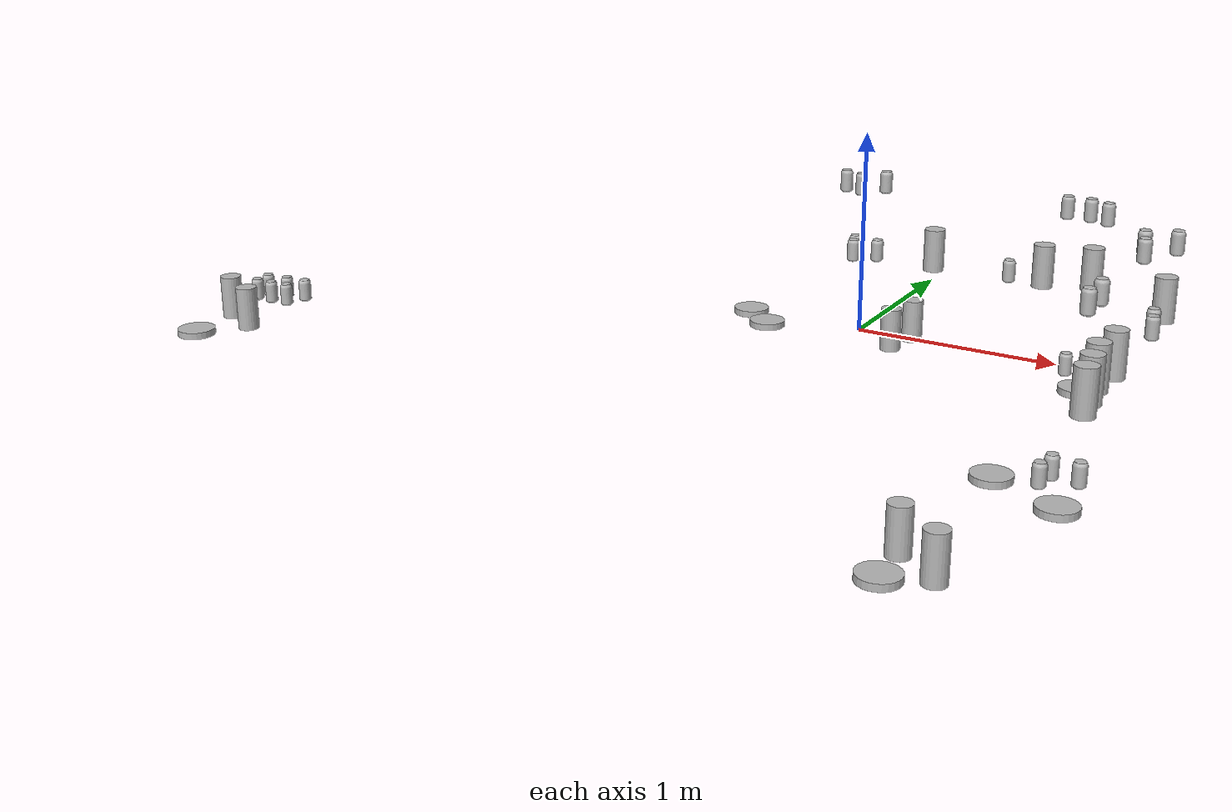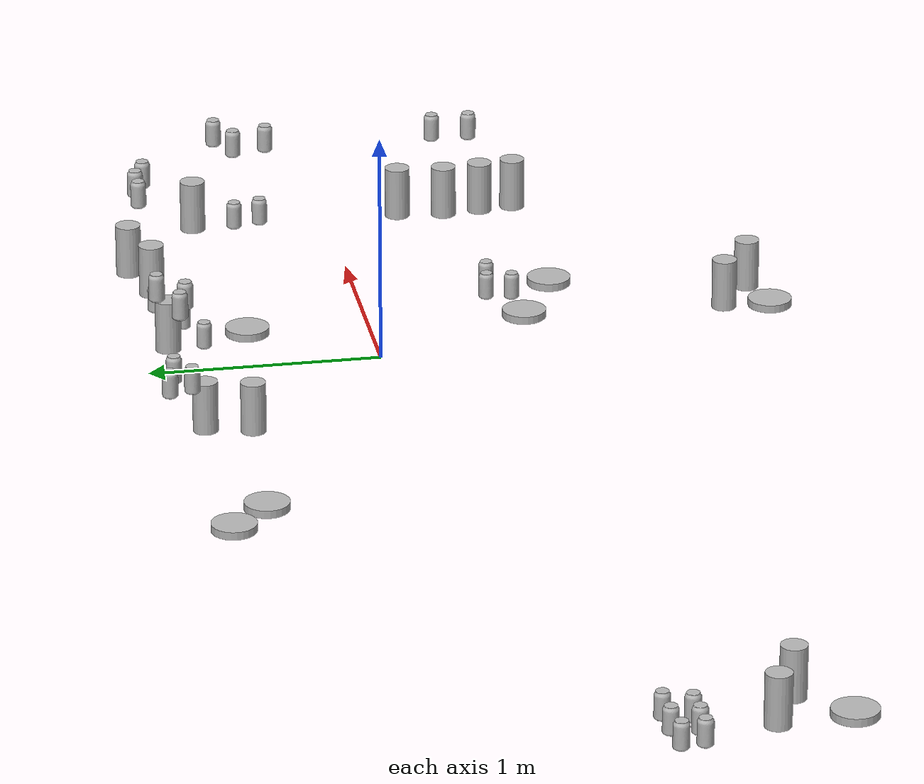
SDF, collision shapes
<?xml version='1.0'?>
<sdf version='1.6'>
  <model name='foods'>
    <model name='beer'>
      <link name='link'>
        <pose frame=''>0 0 0.115 0 -0 0</pose>
        <inertial>
          <mass>0.39</mass>
          <inertia>
            <ixx>0.00058</ixx>
            <ixy>0</ixy>
            <ixz>0</ixz>
            <iyy>0.00058</iyy>
            <iyz>0</iyz>
            <izz>0.00019</izz>
          </inertia>
        </inertial>
        <collision name='collision'>
          <geometry>
            <cylinder>
              <radius>0.055</radius>
              <length>0.23</length>
            </cylinder>
          </geometry>
        </collision>
        <visual name='visual'>
          <geometry>
            <cylinder>
              <radius>0.055</radius>
              <length>0.23</length>
            </cylinder>
          </geometry>
          <material>
            <script>
              <uri>model://beer/materials/scripts</uri>
              <uri>model://beer/materials/textures</uri>
              <name>Beer/Diffuse</name>
            </script>
          </material>
        </visual>
      </link>
      <pose frame=''>1.35123 -0.81106 0.089405 0 -0 0</pose>
    </model>
    <model name='beer_clone'>
      <link name='link'>
        <pose frame=''>0 0 0.115 0 -0 0</pose>
        <inertial>
          <mass>0.39</mass>
          <inertia>
            <ixx>0.00058</ixx>
            <ixy>0</ixy>
            <ixz>0</ixz>
            <iyy>0.00058</iyy>
            <iyz>0</iyz>
            <izz>0.00019</izz>
          </inertia>
        </inertial>
        <collision name='collision'>
          <geometry>
            <cylinder>
              <radius>0.055</radius>
              <length>0.23</length>
            </cylinder>
          </geometry>
        </collision>
        <visual name='visual'>
          <geometry>
            <cylinder>
              <radius>0.055</radius>
              <length>0.23</length>
            </cylinder>
          </geometry>
          <material>
            <script>
              <uri>model://beer/materials/scripts</uri>
              <uri>model://beer/materials/textures</uri>
              <name>Beer/Diffuse</name>
            </script>
          </material>
        </visual>
      </link>
      <pose frame=''>1.33383 -0.659968 0.08941 0 -0 0</pose>
    </model>
    <model name='beer_clone_0'>
      <link name='link'>
        <pose frame=''>0 0 0.115 0 -0 0</pose>
        <inertial>
          <mass>0.39</mass>
          <inertia>
            <ixx>0.00058</ixx>
            <ixy>0</ixy>
            <ixz>0</ixz>
            <iyy>0.00058</iyy>
            <iyz>0</iyz>
            <izz>0.00019</izz>
          </inertia>
        </inertial>
        <collision name='collision'>
          <geometry>
            <cylinder>
              <radius>0.055</radius>
              <length>0.23</length>
            </cylinder>
          </geometry>
        </collision>
        <visual name='visual'>
          <geometry>
            <cylinder>
              <radius>0.055</radius>
              <length>0.23</length>
            </cylinder>
          </geometry>
          <material>
            <script>
              <uri>model://beer/materials/scripts</uri>
              <uri>model://beer/materials/textures</uri>
              <name>Beer/Diffuse</name>
            </script>
          </material>
        </visual>
      </link>
      <pose frame=''>1.31457 -0.493374 0.08941 0 -0 0</pose>
    </model>
    <model name='beer_clone_1'>
      <link name='link'>
        <pose frame=''>0 0 0.115 0 -0 0</pose>
        <inertial>
          <mass>0.39</mass>
          <inertia>
            <ixx>0.00058</ixx>
            <ixy>0</ixy>
            <ixz>0</ixz>
            <iyy>0.00058</iyy>
            <iyz>0</iyz>
            <izz>0.00019</izz>
          </inertia>
        </inertial>
        <collision name='collision'>
          <geometry>
            <cylinder>
              <radius>0.055</radius>
              <length>0.23</length>
            </cylinder>
          </geometry>
        </collision>
        <visual name='visual'>
          <geometry>
            <cylinder>
              <radius>0.055</radius>
              <length>0.23</length>
            </cylinder>
          </geometry>
          <material>
            <script>
              <uri>model://beer/materials/scripts</uri>
              <uri>model://beer/materials/textures</uri>
              <name>Beer/Diffuse</name>
            </script>
          </material>
        </visual>
      </link>
      <pose frame=''>1.3356 -0.288236 0.08941 0 -0 0</pose>
    </model>
    <model name='beer_clone_2'>
      <link name='link'>
        <pose frame=''>0 0 0.115 0 -0 0</pose>
        <inertial>
          <mass>0.39</mass>
          <inertia>
            <ixx>0.00058</ixx>
            <ixy>0</ixy>
            <ixz>0</ixz>
            <iyy>0.00058</iyy>
            <iyz>0</iyz>
            <izz>0.00019</izz>
          </inertia>
        </inertial>
        <collision name='collision'>
          <geometry>
            <cylinder>
              <radius>0.055</radius>
              <length>0.23</length>
            </cylinder>
          </geometry>
        </collision>
        <visual name='visual'>
          <geometry>
            <cylinder>
              <radius>0.055</radius>
              <length>0.23</length>
            </cylinder>
          </geometry>
          <material>
            <script>
              <uri>model://beer/materials/scripts</uri>
              <uri>model://beer/materials/textures</uri>
              <name>Beer/Diffuse</name>
            </script>
          </material>
        </visual>
      </link>
      <pose frame=''>0.883498 0.975032 0.08941 0 -0 0</pose>
    </model>
    <model name='beer_clone_3'>
      <link name='link'>
        <pose frame=''>0 0 0.115 0 -0 0</pose>
        <inertial>
          <mass>0.39</mass>
          <inertia>
            <ixx>0.00058</ixx>
            <ixy>0</ixy>
            <ixz>0</ixz>
            <iyy>0.00058</iyy>
            <iyz>0</iyz>
            <izz>0.00019</izz>
          </inertia>
        </inertial>
        <collision name='collision'>
          <geometry>
            <cylinder>
              <radius>0.055</radius>
              <length>0.23</length>
            </cylinder>
          </geometry>
        </collision>
        <visual name='visual'>
          <geometry>
            <cylinder>
              <radius>0.055</radius>
              <length>0.23</length>
            </cylinder>
          </geometry>
          <material>
            <script>
              <uri>model://beer/materials/scripts</uri>
              <uri>model://beer/materials/textures</uri>
              <name>Beer/Diffuse</name>
            </script>
          </material>
        </visual>
      </link>
      <pose frame=''>0.644539 0.903072 0.08941 0 -0 0</pose>
    </model>
    <model name='beer_clone_4'>
      <link name='link'>
        <pose frame=''>0 0 0.115 0 -0 0</pose>
        <inertial>
          <mass>0.39</mass>
          <inertia>
            <ixx>0.00058</ixx>
            <ixy>0</ixy>
            <ixz>0</ixz>
            <iyy>0.00058</iyy>
            <iyz>0</iyz>
            <izz>0.00019</izz>
          </inertia>
        </inertial>
        <collision name='collision'>
          <geometry>
            <cylinder>
              <radius>0.055</radius>
              <length>0.23</length>
            </cylinder>
          </geometry>
        </collision>
        <visual name='visual'>
          <geometry>
            <cylinder>
              <radius>0.055</radius>
              <length>0.23</length>
            </cylinder>
          </geometry>
          <material>
            <script>
              <uri>model://beer/materials/scripts</uri>
              <uri>model://beer/materials/textures</uri>
              <name>Beer/Diffuse</name>
            </script>
          </material>
        </visual>
      </link>
      <pose frame=''>0.040166 0.906995 0.08941 0 -0 0</pose>
    </model>
    <model name='beer_clone_5'>
      <link name='link'>
        <pose frame=''>0 0 0.115 0 -0 0</pose>
        <inertial>
          <mass>0.39</mass>
          <inertia>
            <ixx>0.00058</ixx>
            <ixy>0</ixy>
            <ixz>0</ixz>
            <iyy>0.00058</iyy>
            <iyz>0</iyz>
            <izz>0.00019</izz>
          </inertia>
        </inertial>
        <collision name='collision'>
          <geometry>
            <cylinder>
              <radius>0.055</radius>
              <length>0.23</length>
            </cylinder>
          </geometry>
        </collision>
        <visual name='visual'>
          <geometry>
            <cylinder>
              <radius>0.055</radius>
              <length>0.23</length>
            </cylinder>
          </geometry>
          <material>
            <script>
              <uri>model://beer/materials/scripts</uri>
              <uri>model://beer/materials/textures</uri>
              <name>Beer/Diffuse</name>
            </script>
          </material>
        </visual>
      </link>
      <pose frame=''>1.33303 0.633833 0.08941 0 -0 0</pose>
    </model>
    <model name='beer_clone_6'>
      <link name='link'>
        <pose frame=''>0 0 0.115 0 -0 0</pose>
        <inertial>
          <mass>0.39</mass>
          <inertia>
            <ixx>0.00058</ixx>
            <ixy>0</ixy>
            <ixz>0</ixz>
            <iyy>0.00058</iyy>
            <iyz>0</iyz>
            <izz>0.00019</izz>
          </inertia>
        </inertial>
        <collision name='collision'>
          <geometry>
            <cylinder>
              <radius>0.055</radius>
              <length>0.23</length>
            </cylinder>
          </geometry>
        </collision>
        <visual name='visual'>
          <geometry>
            <cylinder>
              <radius>0.055</radius>
              <length>0.23</length>
            </cylinder>
          </geometry>
          <material>
            <script>
              <uri>model://beer/materials/scripts</uri>
              <uri>model://beer/materials/textures</uri>
              <name>Beer/Diffuse</name>
            </script>
          </material>
        </visual>
      </link>
      <pose frame=''>1.11448 -1.8425 -0.278763 0 -0 0</pose>
    </model>
    <model name='beer_clone_6_clone'>
      <link name='link'>
        <pose frame=''>0 0 0.115 0 -0 0</pose>
        <inertial>
          <mass>0.39</mass>
          <inertia>
            <ixx>0.00058</ixx>
            <ixy>0</ixy>
            <ixz>0</ixz>
            <iyy>0.00058</iyy>
            <iyz>0</iyz>
            <izz>0.00019</izz>
          </inertia>
        </inertial>
        <collision name='collision'>
          <geometry>
            <cylinder>
              <radius>0.055</radius>
              <length>0.23</length>
            </cylinder>
          </geometry>
        </collision>
        <visual name='visual'>
          <geometry>
            <cylinder>
              <radius>0.055</radius>
              <length>0.23</length>
            </cylinder>
          </geometry>
          <material>
            <script>
              <uri>model://beer/materials/scripts</uri>
              <uri>model://beer/materials/textures</uri>
              <name>Beer/Diffuse</name>
            </script>
          </material>
        </visual>
      </link>
      <pose frame=''>0.910279 -1.69737 -0.27876 0 -0 0</pose>
    </model>
    <model name='beer_clone_6_clone_0'>
      <link name='link'>
        <pose frame=''>0 0 0.115 0 -0 0</pose>
        <inertial>
          <mass>0.39</mass>
          <inertia>
            <ixx>0.00058</ixx>
            <ixy>0</ixy>
            <ixz>0</ixz>
            <iyy>0.00058</iyy>
            <iyz>0</iyz>
            <izz>0.00019</izz>
          </inertia>
        </inertial>
        <collision name='collision'>
          <geometry>
            <cylinder>
              <radius>0.055</radius>
              <length>0.23</length>
            </cylinder>
          </geometry>
        </collision>
        <visual name='visual'>
          <geometry>
            <cylinder>
              <radius>0.055</radius>
              <length>0.23</length>
            </cylinder>
          </geometry>
          <material>
            <script>
              <uri>model://beer/materials/scripts</uri>
              <uri>model://beer/materials/textures</uri>
              <name>Beer/Diffuse</name>
            </script>
          </material>
        </visual>
      </link>
      <pose frame=''>-0.007797 0.760618 -0.27876 0 -0 0</pose>
    </model>
    <model name='beer_clone_6_clone_1'>
      <link name='link'>
        <pose frame=''>0 0 0.115 0 -0 0</pose>
        <inertial>
          <mass>0.39</mass>
          <inertia>
            <ixx>0.00058</ixx>
            <ixy>0</ixy>
            <ixz>0</ixz>
            <iyy>0.00058</iyy>
            <iyz>0</iyz>
            <izz>0.00019</izz>
          </inertia>
        </inertial>
        <collision name='collision'>
          <geometry>
            <cylinder>
              <radius>0.055</radius>
              <length>0.23</length>
            </cylinder>
          </geometry>
        </collision>
        <visual name='visual'>
          <geometry>
            <cylinder>
              <radius>0.055</radius>
              <length>0.23</length>
            </cylinder>
          </geometry>
          <material>
            <script>
              <uri>model://beer/materials/scripts</uri>
              <uri>model://beer/materials/textures</uri>
              <name>Beer/Diffuse</name>
            </script>
          </material>
        </visual>
      </link>
      <pose frame=''>-0.051418 0.560014 -0.27876 0 -0 0</pose>
    </model>
    <model name='beer_clone_6_clone_1_clone'>
      <link name='link'>
        <pose frame=''>0 0 0.115 0 -0 0</pose>
        <inertial>
          <mass>0.39</mass>
          <inertia>
            <ixx>0.00058</ixx>
            <ixy>0</ixy>
            <ixz>0</ixz>
            <iyy>0.00058</iyy>
            <iyz>0</iyz>
            <izz>0.00019</izz>
          </inertia>
        </inertial>
        <collision name='collision'>
          <geometry>
            <cylinder>
              <radius>0.055</radius>
              <length>0.23</length>
            </cylinder>
          </geometry>
        </collision>
        <visual name='visual'>
          <geometry>
            <cylinder>
              <radius>0.055</radius>
              <length>0.23</length>
            </cylinder>
          </geometry>
          <material>
            <script>
              <uri>model://beer/materials/scripts</uri>
              <uri>model://beer/materials/textures</uri>
              <name>Beer/Diffuse</name>
            </script>
          </material>
        </visual>
      </link>
      <pose frame=''>-3.28188 -1.01722 -0.182944 0 -0 0</pose>
    </model>
    <model name='beer_clone_6_clone_1_clone_clone'>
      <link name='link'>
        <pose frame=''>0 0 0.115 0 -0 0</pose>
        <inertial>
          <mass>0.39</mass>
          <inertia>
            <ixx>0.00058</ixx>
            <ixy>0</ixy>
            <ixz>0</ixz>
            <iyy>0.00058</iyy>
            <iyz>0</iyz>
            <izz>0.00019</izz>
          </inertia>
        </inertial>
        <collision name='collision'>
          <geometry>
            <cylinder>
              <radius>0.055</radius>
              <length>0.23</length>
            </cylinder>
          </geometry>
        </collision>
        <visual name='visual'>
          <geometry>
            <cylinder>
              <radius>0.055</radius>
              <length>0.23</length>
            </cylinder>
          </geometry>
          <material>
            <script>
              <uri>model://beer/materials/scripts</uri>
              <uri>model://beer/materials/textures</uri>
              <name>Beer/Diffuse</name>
            </script>
          </material>
        </visual>
      </link>
      <pose frame=''>-3.06271 -1.12526 -0.18294 0 -0 0</pose>
    </model>
    <model name='bowl'>
      <link name='link'>
        <inertial>
          <pose frame=''>0 0 0.0175 0 -0 0</pose>
          <mass>0.1</mass>
          <inertia>
            <ixx>0.000250308</ixx>
            <ixy>0</ixy>
            <ixz>0</ixz>
            <iyy>0.000250308</iyy>
            <iyz>0</iyz>
            <izz>0.0004802</izz>
          </inertia>
        </inertial>
        <collision name='collision'>
          <pose frame=''>0 0 0.0175 0 -0 0</pose>
          <geometry>
            <cylinder>
              <radius>0.098</radius>
              <length>0.035</length>
            </cylinder>
          </geometry>
        </collision>
        <visual name='visual'>
          <geometry>
            <mesh>
              <uri>model://bowl/meshes/bowl.dae</uri>
            </mesh>
          </geometry>
        </visual>
      </link>
      <pose frame=''>-0.991925 0.772699 -0.287326 0 -0 0</pose>
    </model>
    <model name='bowl_clone'>
      <link name='link'>
        <inertial>
          <pose frame=''>0 0 0.0175 0 -0 0</pose>
          <mass>0.1</mass>
          <inertia>
            <ixx>0.000250308</ixx>
            <ixy>0</ixy>
            <ixz>0</ixz>
            <iyy>0.000250308</iyy>
            <iyz>0</iyz>
            <izz>0.0004802</izz>
          </inertia>
        </inertial>
        <collision name='collision'>
          <pose frame=''>0 0 0.0175 0 -0 0</pose>
          <geometry>
            <cylinder>
              <radius>0.098</radius>
              <length>0.035</length>
            </cylinder>
          </geometry>
        </collision>
        <visual name='visual'>
          <geometry>
            <mesh>
              <uri>model://bowl/meshes/bowl.dae</uri>
            </mesh>
          </geometry>
        </visual>
      </link>
      <pose frame=''>-0.810583 0.609776 -0.287325 0 -0 0</pose>
    </model>
    <model name='bowl_clone_0'>
      <link name='link'>
        <inertial>
          <pose frame=''>0 0 0.0175 0 -0 0</pose>
          <mass>0.1</mass>
          <inertia>
            <ixx>0.000250308</ixx>
            <ixy>0</ixy>
            <ixz>0</ixz>
            <iyy>0.000250308</iyy>
            <iyz>0</iyz>
            <izz>0.0004802</izz>
          </inertia>
        </inertial>
        <collision name='collision'>
          <pose frame=''>0 0 0.0175 0 -0 0</pose>
          <geometry>
            <cylinder>
              <radius>0.098</radius>
              <length>0.035</length>
            </cylinder>
          </geometry>
        </collision>
        <visual name='visual'>
          <geometry>
            <mesh>
              <uri>model://bowl/meshes/bowl.dae</uri>
            </mesh>
          </geometry>
        </visual>
      </link>
      <pose frame=''>0.997264 0.441576 -0.287325 0 -0 0</pose>
    </model>
    <model name='bowl_clone_1'>
      <link name='link'>
        <inertial>
          <pose frame=''>0 0 0.0175 0 -0 0</pose>
          <mass>0.1</mass>
          <inertia>
            <ixx>0.000250308</ixx>
            <ixy>0</ixy>
            <ixz>0</ixz>
            <iyy>0.000250308</iyy>
            <iyz>0</iyz>
            <izz>0.0004802</izz>
          </inertia>
        </inertial>
        <collision name='collision'>
          <pose frame=''>0 0 0.0175 0 -0 0</pose>
          <geometry>
            <cylinder>
              <radius>0.098</radius>
              <length>0.035</length>
            </cylinder>
          </geometry>
        </collision>
        <visual name='visual'>
          <geometry>
            <mesh>
              <uri>model://bowl/meshes/bowl.dae</uri>
            </mesh>
          </geometry>
        </visual>
      </link>
      <pose frame=''>0.979952 -0.801535 -0.287325 0 -0 0</pose>
    </model>
    <model name='bowl_clone_2'>
      <link name='link'>
        <inertial>
          <pose frame=''>0 0 0.0175 0 -0 0</pose>
          <mass>0.1</mass>
          <inertia>
            <ixx>0.000250308</ixx>
            <ixy>0</ixy>
            <ixz>0</ixz>
            <iyy>0.000250308</iyy>
            <iyz>0</iyz>
            <izz>0.0004802</izz>
          </inertia>
        </inertial>
        <collision name='collision'>
          <pose frame=''>0 0 0.0175 0 -0 0</pose>
          <geometry>
            <cylinder>
              <radius>0.098</radius>
              <length>0.035</length>
            </cylinder>
          </geometry>
        </collision>
        <visual name='visual'>
          <geometry>
            <mesh>
              <uri>model://bowl/meshes/bowl.dae</uri>
            </mesh>
          </geometry>
        </visual>
      </link>
      <pose frame=''>1.32367 -0.976629 -0.287325 0 -0 0</pose>
    </model>
    <model name='bowl_clone_3'>
      <link name='link'>
        <inertial>
          <pose frame=''>0 0 0.0175 0 -0 0</pose>
          <mass>0.1</mass>
          <inertia>
            <ixx>0.000250308</ixx>
            <ixy>0</ixy>
            <ixz>0</ixz>
            <iyy>0.000250308</iyy>
            <iyz>0</iyz>
            <izz>0.0004802</izz>
          </inertia>
        </inertial>
        <collision name='collision'>
          <pose frame=''>0 0 0.0175 0 -0 0</pose>
          <geometry>
            <cylinder>
              <radius>0.098</radius>
              <length>0.035</length>
            </cylinder>
          </geometry>
        </collision>
        <visual name='visual'>
          <geometry>
            <mesh>
              <uri>model://bowl/meshes/bowl.dae</uri>
            </mesh>
          </geometry>
        </visual>
      </link>
      <pose frame=''>0.916988 -1.90836 -0.287325 0 -0 0</pose>
    </model>
    <model name='bowl_clone_4'>
      <link name='link'>
        <inertial>
          <pose frame=''>0 0 0.0175 0 -0 0</pose>
          <mass>0.1</mass>
          <inertia>
            <ixx>0.000250308</ixx>
            <ixy>0</ixy>
            <ixz>0</ixz>
            <iyy>0.000250308</iyy>
            <iyz>0</iyz>
            <izz>0.0004802</izz>
          </inertia>
        </inertial>
        <collision name='collision'>
          <pose frame=''>0 0 0.0175 0 -0 0</pose>
          <geometry>
            <cylinder>
              <radius>0.098</radius>
              <length>0.035</length>
            </cylinder>
          </geometry>
        </collision>
        <visual name='visual'>
          <geometry>
            <mesh>
              <uri>model://bowl/meshes/bowl.dae</uri>
            </mesh>
          </geometry>
        </visual>
      </link>
      <pose frame=''>-3.24146 -1.33125 -0.18912 0 -0 0</pose>
    </model>
    <model name='coke_can'>
      <link name='link'>
        <inertial>
          <pose frame=''>0 0 0.06 0 -0 0</pose>
          <mass>0.39</mass>
          <inertia>
            <ixx>0.00055575</ixx>
            <ixy>0</ixy>
            <ixz>0</ixz>
            <iyy>0.00055575</iyy>
            <iyz>0</iyz>
            <izz>0.0001755</izz>
          </inertia>
        </inertial>
        <collision name='collision'>
          <pose frame=''>0.003937 0.004724 -0.18 0 -0 0</pose>
          <geometry>
            <mesh>
              <uri>model://coke_can/meshes/coke_can.dae</uri>
            </mesh>
          </geometry>
          <surface>
            <friction>
              <ode>
                <mu>1</mu>
                <mu2>1</mu2>
              </ode>
            </friction>
            <contact>
              <ode>
                <kp>1e+07</kp>
                <kd>1</kd>
                <min_depth>0.001</min_depth>
                <max_vel>0.1</max_vel>
              </ode>
            </contact>
          </surface>
        </collision>
        <visual name='visual'>
          <pose frame=''>0.003937 0.004724 -0.18 0 -0 0</pose>
          <geometry>
            <mesh>
              <uri>model://coke_can/meshes/coke_can.dae</uri>
            </mesh>
          </geometry>
        </visual>
      </link>
      <pose frame=''>1.33182 -0.68984 -0.286952 0 -0 0</pose>
    </model>
    <model name='coke_can_clone'>
      <link name='link'>
        <inertial>
          <pose frame=''>0 0 0.06 0 -0 0</pose>
          <mass>0.39</mass>
          <inertia>
            <ixx>0.00055575</ixx>
            <ixy>0</ixy>
            <ixz>0</ixz>
            <iyy>0.00055575</iyy>
            <iyz>0</iyz>
            <izz>0.0001755</izz>
          </inertia>
        </inertial>
        <collision name='collision'>
          <pose frame=''>0.003937 0.004724 -0.18 0 -0 0</pose>
          <geometry>
            <mesh>
              <uri>model://coke_can/meshes/coke_can.dae</uri>
            </mesh>
          </geometry>
          <surface>
            <friction>
              <ode>
                <mu>1</mu>
                <mu2>1</mu2>
              </ode>
            </friction>
            <contact>
              <ode>
                <kp>1e+07</kp>
                <kd>1</kd>
                <min_depth>0.001</min_depth>
                <max_vel>0.1</max_vel>
              </ode>
            </contact>
          </surface>
        </collision>
        <visual name='visual'>
          <pose frame=''>0.003937 0.004724 -0.18 0 -0 0</pose>
          <geometry>
            <mesh>
              <uri>model://coke_can/meshes/coke_can.dae</uri>
            </mesh>
          </geometry>
        </visual>
      </link>
      <pose frame=''>1.20274 -0.668727 -0.286952 0 -0 0</pose>
    </model>
    <model name='coke_can_clone_0'>
      <link name='link'>
        <inertial>
          <pose frame=''>0 0 0.06 0 -0 0</pose>
          <mass>0.39</mass>
          <inertia>
            <ixx>0.00055575</ixx>
            <ixy>0</ixy>
            <ixz>0</ixz>
            <iyy>0.00055575</iyy>
            <iyz>0</iyz>
            <izz>0.0001755</izz>
          </inertia>
        </inertial>
        <collision name='collision'>
          <pose frame=''>0.003937 0.004724 -0.18 0 -0 0</pose>
          <geometry>
            <mesh>
              <uri>model://coke_can/meshes/coke_can.dae</uri>
            </mesh>
          </geometry>
          <surface>
            <friction>
              <ode>
                <mu>1</mu>
                <mu2>1</mu2>
              </ode>
            </friction>
            <contact>
              <ode>
                <kp>1e+07</kp>
                <kd>1</kd>
                <min_depth>0.001</min_depth>
                <max_vel>0.1</max_vel>
              </ode>
            </contact>
          </surface>
        </collision>
        <visual name='visual'>
          <pose frame=''>0.003937 0.004724 -0.18 0 -0 0</pose>
          <geometry>
            <mesh>
              <uri>model://coke_can/meshes/coke_can.dae</uri>
            </mesh>
          </geometry>
        </visual>
      </link>
      <pose frame=''>1.18333 -0.780639 -0.286952 0 -0 0</pose>
    </model>
    <model name='coke_can_clone_1'>
      <link name='link'>
        <inertial>
          <pose frame=''>0 0 0.06 0 -0 0</pose>
          <mass>0.39</mass>
          <inertia>
            <ixx>0.00055575</ixx>
            <ixy>0</ixy>
            <ixz>0</ixz>
            <iyy>0.00055575</iyy>
            <iyz>0</iyz>
            <izz>0.0001755</izz>
          </inertia>
        </inertial>
        <collision name='collision'>
          <pose frame=''>0.003937 0.004724 -0.18 0 -0 0</pose>
          <geometry>
            <mesh>
              <uri>model://coke_can/meshes/coke_can.dae</uri>
            </mesh>
          </geometry>
          <surface>
            <friction>
              <ode>
                <mu>1</mu>
                <mu2>1</mu2>
              </ode>
            </friction>
            <contact>
              <ode>
                <kp>1e+07</kp>
                <kd>1</kd>
                <min_depth>0.001</min_depth>
                <max_vel>0.1</max_vel>
              </ode>
            </contact>
          </surface>
        </collision>
        <visual name='visual'>
          <pose frame=''>0.003937 0.004724 -0.18 0 -0 0</pose>
          <geometry>
            <mesh>
              <uri>model://coke_can/meshes/coke_can.dae</uri>
            </mesh>
          </geometry>
        </visual>
      </link>
      <pose frame=''>1.06514 0.797649 -0.286952 0 -0 0</pose>
    </model>
    <model name='coke_can_clone_2'>
      <link name='link'>
        <inertial>
          <pose frame=''>0 0 0.06 0 -0 0</pose>
          <mass>0.39</mass>
          <inertia>
            <ixx>0.00055575</ixx>
            <ixy>0</ixy>
            <ixz>0</ixz>
            <iyy>0.00055575</iyy>
            <iyz>0</iyz>
            <izz>0.0001755</izz>
          </inertia>
        </inertial>
        <collision name='collision'>
          <pose frame=''>0.003937 0.004724 -0.18 0 -0 0</pose>
          <geometry>
            <mesh>
              <uri>model://coke_can/meshes/coke_can.dae</uri>
            </mesh>
          </geometry>
          <surface>
            <friction>
              <ode>
                <mu>1</mu>
                <mu2>1</mu2>
              </ode>
            </friction>
            <contact>
              <ode>
                <kp>1e+07</kp>
                <kd>1</kd>
                <min_depth>0.001</min_depth>
                <max_vel>0.1</max_vel>
              </ode>
            </contact>
          </surface>
        </collision>
        <visual name='visual'>
          <pose frame=''>0.003937 0.004724 -0.18 0 -0 0</pose>
          <geometry>
            <mesh>
              <uri>model://coke_can/meshes/coke_can.dae</uri>
            </mesh>
          </geometry>
        </visual>
      </link>
      <pose frame=''>1.10199 0.715292 -0.286952 0 -0 0</pose>
    </model>
    <model name='coke_can_clone_3'>
      <link name='link'>
        <inertial>
          <pose frame=''>0 0 0.06 0 -0 0</pose>
          <mass>0.39</mass>
          <inertia>
            <ixx>0.00055575</ixx>
            <ixy>0</ixy>
            <ixz>0</ixz>
            <iyy>0.00055575</iyy>
            <iyz>0</iyz>
            <izz>0.0001755</izz>
          </inertia>
        </inertial>
        <collision name='collision'>
          <pose frame=''>0.003937 0.004724 -0.18 0 -0 0</pose>
          <geometry>
            <mesh>
              <uri>model://coke_can/meshes/coke_can.dae</uri>
            </mesh>
          </geometry>
          <surface>
            <friction>
              <ode>
                <mu>1</mu>
                <mu2>1</mu2>
              </ode>
            </friction>
            <contact>
              <ode>
                <kp>1e+07</kp>
                <kd>1</kd>
                <min_depth>0.001</min_depth>
                <max_vel>0.1</max_vel>
              </ode>
            </contact>
          </surface>
        </collision>
        <visual name='visual'>
          <pose frame=''>0.003937 0.004724 -0.18 0 -0 0</pose>
          <geometry>
            <mesh>
              <uri>model://coke_can/meshes/coke_can.dae</uri>
            </mesh>
          </geometry>
        </visual>
      </link>
      <pose frame=''>0.872448 0.650774 -0.286952 0 -0 0</pose>
    </model>
    <model name='coke_can_clone_4'>
      <link name='link'>
        <inertial>
          <pose frame=''>0 0 0.06 0 -0 0</pose>
          <mass>0.39</mass>
          <inertia>
            <ixx>0.00055575</ixx>
            <ixy>0</ixy>
            <ixz>0</ixz>
            <iyy>0.00055575</iyy>
            <iyz>0</iyz>
            <izz>0.0001755</izz>
          </inertia>
        </inertial>
        <collision name='collision'>
          <pose frame=''>0.003937 0.004724 -0.18 0 -0 0</pose>
          <geometry>
            <mesh>
              <uri>model://coke_can/meshes/coke_can.dae</uri>
            </mesh>
          </geometry>
          <surface>
            <friction>
              <ode>
                <mu>1</mu>
                <mu2>1</mu2>
              </ode>
            </friction>
            <contact>
              <ode>
                <kp>1e+07</kp>
                <kd>1</kd>
                <min_depth>0.001</min_depth>
                <max_vel>0.1</max_vel>
              </ode>
            </contact>
          </surface>
        </collision>
        <visual name='visual'>
          <pose frame=''>0.003937 0.004724 -0.18 0 -0 0</pose>
          <geometry>
            <mesh>
              <uri>model://coke_can/meshes/coke_can.dae</uri>
            </mesh>
          </geometry>
        </visual>
      </link>
      <pose frame=''>-0.443111 0.961917 0.082808 0 -0 0</pose>
    </model>
    <model name='coke_can_clone_4_clone'>
      <link name='link'>
        <inertial>
          <pose frame=''>0 0 0.06 0 -0 0</pose>
          <mass>0.39</mass>
          <inertia>
            <ixx>0.00055575</ixx>
            <ixy>0</ixy>
            <ixz>0</ixz>
            <iyy>0.00055575</iyy>
            <iyz>0</iyz>
            <izz>0.0001755</izz>
          </inertia>
        </inertial>
        <collision name='collision'>
          <pose frame=''>0.003937 0.004724 -0.18 0 -0 0</pose>
          <geometry>
            <mesh>
              <uri>model://coke_can/meshes/coke_can.dae</uri>
            </mesh>
          </geometry>
          <surface>
            <friction>
              <ode>
                <mu>1</mu>
                <mu2>1</mu2>
              </ode>
            </friction>
            <contact>
              <ode>
                <kp>1e+07</kp>
                <kd>1</kd>
                <min_depth>0.001</min_depth>
                <max_vel>0.1</max_vel>
              </ode>
            </contact>
          </surface>
        </collision>
        <visual name='visual'>
          <pose frame=''>0.003937 0.004724 -0.18 0 -0 0</pose>
          <geometry>
            <mesh>
              <uri>model://coke_can/meshes/coke_can.dae</uri>
            </mesh>
          </geometry>
        </visual>
      </link>
      <pose frame=''>-0.41351 0.865103 0.08281 0 -0 0</pose>
    </model>
    <model name='coke_can_clone_4_clone_0'>
      <link name='link'>
        <inertial>
          <pose frame=''>0 0 0.06 0 -0 0</pose>
          <mass>0.39</mass>
          <inertia>
            <ixx>0.00055575</ixx>
            <ixy>0</ixy>
            <ixz>0</ixz>
            <iyy>0.00055575</iyy>
            <iyz>0</iyz>
            <izz>0.0001755</izz>
          </inertia>
        </inertial>
        <collision name='collision'>
          <pose frame=''>0.003937 0.004724 -0.18 0 -0 0</pose>
          <geometry>
            <mesh>
              <uri>model://coke_can/meshes/coke_can.dae</uri>
            </mesh>
          </geometry>
          <surface>
            <friction>
              <ode>
                <mu>1</mu>
                <mu2>1</mu2>
              </ode>
            </friction>
            <contact>
              <ode>
                <kp>1e+07</kp>
                <kd>1</kd>
                <min_depth>0.001</min_depth>
                <max_vel>0.1</max_vel>
              </ode>
            </contact>
          </surface>
        </collision>
        <visual name='visual'>
          <pose frame=''>0.003937 0.004724 -0.18 0 -0 0</pose>
          <geometry>
            <mesh>
              <uri>model://coke_can/meshes/coke_can.dae</uri>
            </mesh>
          </geometry>
        </visual>
      </link>
      <pose frame=''>-0.297476 0.927027 0.08281 0 -0 0</pose>
    </model>
    <model name='coke_can_clone_4_clone_0_clone'>
      <link name='link'>
        <inertial>
          <pose frame=''>0 0 0.06 0 -0 0</pose>
          <mass>0.39</mass>
          <inertia>
            <ixx>0.00055575</ixx>
            <ixy>0</ixy>
            <ixz>0</ixz>
            <iyy>0.00055575</iyy>
            <iyz>0</iyz>
            <izz>0.0001755</izz>
          </inertia>
        </inertial>
        <collision name='collision'>
          <pose frame=''>0.003937 0.004724 -0.18 0 -0 0</pose>
          <geometry>
            <mesh>
              <uri>model://coke_can/meshes/coke_can.dae</uri>
            </mesh>
          </geometry>
          <surface>
            <friction>
              <ode>
                <mu>1</mu>
                <mu2>1</mu2>
              </ode>
            </friction>
            <contact>
              <ode>
                <kp>1e+07</kp>
                <kd>1</kd>
                <min_depth>0.001</min_depth>
                <max_vel>0.1</max_vel>
              </ode>
            </contact>
          </surface>
        </collision>
        <visual name='visual'>
          <pose frame=''>0.003937 0.004724 -0.18 0 -0 0</pose>
          <geometry>
            <mesh>
              <uri>model://coke_can/meshes/coke_can.dae</uri>
            </mesh>
          </geometry>
        </visual>
      </link>
      <pose frame=''>-3.39047 -0.709546 -0.189401 0 -0 0</pose>
    </model>
    <model name='coke_can_clone_4_clone_0_clone_clone'>
      <link name='link'>
        <inertial>
          <pose frame=''>0 0 0.06 0 -0 0</pose>
          <mass>0.39</mass>
          <inertia>
            <ixx>0.00055575</ixx>
            <ixy>0</ixy>
            <ixz>0</ixz>
            <iyy>0.00055575</iyy>
            <iyz>0</iyz>
            <izz>0.0001755</izz>
          </inertia>
        </inertial>
        <collision name='collision'>
          <pose frame=''>0.003937 0.004724 -0.18 0 -0 0</pose>
          <geometry>
            <mesh>
              <uri>model://coke_can/meshes/coke_can.dae</uri>
            </mesh>
          </geometry>
          <surface>
            <friction>
              <ode>
                <mu>1</mu>
                <mu2>1</mu2>
              </ode>
            </friction>
            <contact>
              <ode>
                <kp>1e+07</kp>
                <kd>1</kd>
                <min_depth>0.001</min_depth>
                <max_vel>0.1</max_vel>
              </ode>
            </contact>
          </surface>
        </collision>
        <visual name='visual'>
          <pose frame=''>0.003937 0.004724 -0.18 0 -0 0</pose>
          <geometry>
            <mesh>
              <uri>model://coke_can/meshes/coke_can.dae</uri>
            </mesh>
          </geometry>
        </visual>
      </link>
      <pose frame=''>-3.39966 -0.613721 -0.1894 0 -0 0</pose>
    </model>
    <model name='coke_can_clone_4_clone_0_clone_clone_0'>
      <link name='link'>
        <inertial>
          <pose frame=''>0 0 0.06 0 -0 0</pose>
          <mass>0.39</mass>
          <inertia>
            <ixx>0.00055575</ixx>
            <ixy>0</ixy>
            <ixz>0</ixz>
            <iyy>0.00055575</iyy>
            <iyz>0</iyz>
            <izz>0.0001755</izz>
          </inertia>
        </inertial>
        <collision name='collision'>
          <pose frame=''>0.003937 0.004724 -0.18 0 -0 0</pose>
          <geometry>
            <mesh>
              <uri>model://coke_can/meshes/coke_can.dae</uri>
            </mesh>
          </geometry>
          <surface>
            <friction>
              <ode>
                <mu>1</mu>
                <mu2>1</mu2>
              </ode>
            </friction>
            <contact>
              <ode>
                <kp>1e+07</kp>
                <kd>1</kd>
                <min_depth>0.001</min_depth>
                <max_vel>0.1</max_vel>
              </ode>
            </contact>
          </surface>
        </collision>
        <visual name='visual'>
          <pose frame=''>0.003937 0.004724 -0.18 0 -0 0</pose>
          <geometry>
            <mesh>
              <uri>model://coke_can/meshes/coke_can.dae</uri>
            </mesh>
          </geometry>
        </visual>
      </link>
      <pose frame=''>-3.27033 -0.598932 -0.1894 0 -0 0</pose>
    </model>
    <model name='coke_can_clone_4_clone_0_clone_clone_1'>
      <link name='link'>
        <inertial>
          <pose frame=''>0 0 0.06 0 -0 0</pose>
          <mass>0.39</mass>
          <inertia>
            <ixx>0.00055575</ixx>
            <ixy>0</ixy>
            <ixz>0</ixz>
            <iyy>0.00055575</iyy>
            <iyz>0</iyz>
            <izz>0.0001755</izz>
          </inertia>
        </inertial>
        <collision name='collision'>
          <pose frame=''>0.003937 0.004724 -0.18 0 -0 0</pose>
          <geometry>
            <mesh>
              <uri>model://coke_can/meshes/coke_can.dae</uri>
            </mesh>
          </geometry>
          <surface>
            <friction>
              <ode>
                <mu>1</mu>
                <mu2>1</mu2>
              </ode>
            </friction>
            <contact>
              <ode>
                <kp>1e+07</kp>
                <kd>1</kd>
                <min_depth>0.001</min_depth>
                <max_vel>0.1</max_vel>
              </ode>
            </contact>
          </surface>
        </collision>
        <visual name='visual'>
          <pose frame=''>0.003937 0.004724 -0.18 0 -0 0</pose>
          <geometry>
            <mesh>
              <uri>model://coke_can/meshes/coke_can.dae</uri>
            </mesh>
          </geometry>
        </visual>
      </link>
      <pose frame=''>-3.28609 -0.710426 -0.1894 0 -0 0</pose>
    </model>
    <model name='coke_can_clone_4_clone_0_clone_clone_2'>
      <link name='link'>
        <inertial>
          <pose frame=''>0 0 0.06 0 -0 0</pose>
          <mass>0.39</mass>
          <inertia>
            <ixx>0.00055575</ixx>
            <ixy>0</ixy>
            <ixz>0</ixz>
            <iyy>0.00055575</iyy>
            <iyz>0</iyz>
            <izz>0.0001755</izz>
          </inertia>
        </inertial>
        <collision name='collision'>
          <pose frame=''>0.003937 0.004724 -0.18 0 -0 0</pose>
          <geometry>
            <mesh>
              <uri>model://coke_can/meshes/coke_can.dae</uri>
            </mesh>
          </geometry>
          <surface>
            <friction>
              <ode>
                <mu>1</mu>
                <mu2>1</mu2>
              </ode>
            </friction>
            <contact>
              <ode>
                <kp>1e+07</kp>
                <kd>1</kd>
                <min_depth>0.001</min_depth>
                <max_vel>0.1</max_vel>
              </ode>
            </contact>
          </surface>
        </collision>
        <visual name='visual'>
          <pose frame=''>0.003937 0.004724 -0.18 0 -0 0</pose>
          <geometry>
            <mesh>
              <uri>model://coke_can/meshes/coke_can.dae</uri>
            </mesh>
          </geometry>
        </visual>
      </link>
      <pose frame=''>-3.14464 -0.59102 -0.1894 0 -0 0</pose>
    </model>
    <model name='coke_can_clone_4_clone_0_clone_clone_3'>
      <link name='link'>
        <inertial>
          <pose frame=''>0 0 0.06 0 -0 0</pose>
          <mass>0.39</mass>
          <inertia>
            <ixx>0.00055575</ixx>
            <ixy>0</ixy>
            <ixz>0</ixz>
            <iyy>0.00055575</iyy>
            <iyz>0</iyz>
            <izz>0.0001755</izz>
          </inertia>
        </inertial>
        <collision name='collision'>
          <pose frame=''>0.003937 0.004724 -0.18 0 -0 0</pose>
          <geometry>
            <mesh>
              <uri>model://coke_can/meshes/coke_can.dae</uri>
            </mesh>
          </geometry>
          <surface>
            <friction>
              <ode>
                <mu>1</mu>
                <mu2>1</mu2>
              </ode>
            </friction>
            <contact>
              <ode>
                <kp>1e+07</kp>
                <kd>1</kd>
                <min_depth>0.001</min_depth>
                <max_vel>0.1</max_vel>
              </ode>
            </contact>
          </surface>
        </collision>
        <visual name='visual'>
          <pose frame=''>0.003937 0.004724 -0.18 0 -0 0</pose>
          <geometry>
            <mesh>
              <uri>model://coke_can/meshes/coke_can.dae</uri>
            </mesh>
          </geometry>
        </visual>
      </link>
      <pose frame=''>-3.17796 -0.705096 -0.1894 0 -0 0</pose>
    </model>
    <model name='coke_can_clone_4_clone_1'>
      <link name='link'>
        <inertial>
          <pose frame=''>0 0 0.06 0 -0 0</pose>
          <mass>0.39</mass>
          <inertia>
            <ixx>0.00055575</ixx>
            <ixy>0</ixy>
            <ixz>0</ixz>
            <iyy>0.00055575</iyy>
            <iyz>0</iyz>
            <izz>0.0001755</izz>
          </inertia>
        </inertial>
        <collision name='collision'>
          <pose frame=''>0.003937 0.004724 -0.18 0 -0 0</pose>
          <geometry>
            <mesh>
              <uri>model://coke_can/meshes/coke_can.dae</uri>
            </mesh>
          </geometry>
          <surface>
            <friction>
              <ode>
                <mu>1</mu>
                <mu2>1</mu2>
              </ode>
            </friction>
            <contact>
              <ode>
                <kp>1e+07</kp>
                <kd>1</kd>
                <min_depth>0.001</min_depth>
                <max_vel>0.1</max_vel>
              </ode>
            </contact>
          </surface>
        </collision>
        <visual name='visual'>
          <pose frame=''>0.003937 0.004724 -0.18 0 -0 0</pose>
          <geometry>
            <mesh>
              <uri>model://coke_can/meshes/coke_can.dae</uri>
            </mesh>
          </geometry>
        </visual>
      </link>
      <pose frame=''>1.32886 0.449756 0.08281 0 -0 0</pose>
    </model>
    <model name='coke_can_clone_4_clone_2'>
      <link name='link'>
        <inertial>
          <pose frame=''>0 0 0.06 0 -0 0</pose>
          <mass>0.39</mass>
          <inertia>
            <ixx>0.00055575</ixx>
            <ixy>0</ixy>
            <ixz>0</ixz>
            <iyy>0.00055575</iyy>
            <iyz>0</iyz>
            <izz>0.0001755</izz>
          </inertia>
        </inertial>
        <collision name='collision'>
          <pose frame=''>0.003937 0.004724 -0.18 0 -0 0</pose>
          <geometry>
            <mesh>
              <uri>model://coke_can/meshes/coke_can.dae</uri>
            </mesh>
          </geometry>
          <surface>
            <friction>
              <ode>
                <mu>1</mu>
                <mu2>1</mu2>
              </ode>
            </friction>
            <contact>
              <ode>
                <kp>1e+07</kp>
                <kd>1</kd>
                <min_depth>0.001</min_depth>
                <max_vel>0.1</max_vel>
              </ode>
            </contact>
          </surface>
        </collision>
        <visual name='visual'>
          <pose frame=''>0.003937 0.004724 -0.18 0 -0 0</pose>
          <geometry>
            <mesh>
              <uri>model://coke_can/meshes/coke_can.dae</uri>
            </mesh>
          </geometry>
        </visual>
      </link>
      <pose frame=''>1.35459 0.332632 0.08281 0 -0 0</pose>
    </model>
    <model name='coke_can_clone_4_clone_3'>
      <link name='link'>
        <inertial>
          <pose frame=''>0 0 0.06 0 -0 0</pose>
          <mass>0.39</mass>
          <inertia>
            <ixx>0.00055575</ixx>
            <ixy>0</ixy>
            <ixz>0</ixz>
            <iyy>0.00055575</iyy>
            <iyz>0</iyz>
            <izz>0.0001755</izz>
          </inertia>
        </inertial>
        <collision name='collision'>
          <pose frame=''>0.003937 0.004724 -0.18 0 -0 0</pose>
          <geometry>
            <mesh>
              <uri>model://coke_can/meshes/coke_can.dae</uri>
            </mesh>
          </geometry>
          <surface>
            <friction>
              <ode>
                <mu>1</mu>
                <mu2>1</mu2>
              </ode>
            </friction>
            <contact>
              <ode>
                <kp>1e+07</kp>
                <kd>1</kd>
                <min_depth>0.001</min_depth>
                <max_vel>0.1</max_vel>
              </ode>
            </contact>
          </surface>
        </collision>
        <visual name='visual'>
          <pose frame=''>0.003937 0.004724 -0.18 0 -0 0</pose>
          <geometry>
            <mesh>
              <uri>model://coke_can/meshes/coke_can.dae</uri>
            </mesh>
          </geometry>
        </visual>
      </link>
      <pose frame=''>0.462481 0.910619 0.08281 0 -0 0</pose>
    </model>
    <model name='coke_can_clone_4_clone_4'>
      <link name='link'>
        <inertial>
          <pose frame=''>0 0 0.06 0 -0 0</pose>
          <mass>0.39</mass>
          <inertia>
            <ixx>0.00055575</ixx>
            <ixy>0</ixy>
            <ixz>0</ixz>
            <iyy>0.00055575</iyy>
            <iyz>0</iyz>
            <izz>0.0001755</izz>
          </inertia>
        </inertial>
        <collision name='collision'>
          <pose frame=''>0.003937 0.004724 -0.18 0 -0 0</pose>
          <geometry>
            <mesh>
              <uri>model://coke_can/meshes/coke_can.dae</uri>
            </mesh>
          </geometry>
          <surface>
            <friction>
              <ode>
                <mu>1</mu>
                <mu2>1</mu2>
              </ode>
            </friction>
            <contact>
              <ode>
                <kp>1e+07</kp>
                <kd>1</kd>
                <min_depth>0.001</min_depth>
                <max_vel>0.1</max_vel>
              </ode>
            </contact>
          </surface>
        </collision>
        <visual name='visual'>
          <pose frame=''>0.003937 0.004724 -0.18 0 -0 0</pose>
          <geometry>
            <mesh>
              <uri>model://coke_can/meshes/coke_can.dae</uri>
            </mesh>
          </geometry>
        </visual>
      </link>
      <pose frame=''>0.960265 0.89794 0.458184 0 -0 0</pose>
    </model>
    <model name='coke_can_clone_4_clone_4_clone'>
      <link name='link'>
        <inertial>
          <pose frame=''>0 0 0.06 0 -0 0</pose>
          <mass>0.39</mass>
          <inertia>
            <ixx>0.00055575</ixx>
            <ixy>0</ixy>
            <ixz>0</ixz>
            <iyy>0.00055575</iyy>
            <iyz>0</iyz>
            <izz>0.0001755</izz>
          </inertia>
        </inertial>
        <collision name='collision'>
          <pose frame=''>0.003937 0.004724 -0.18 0 -0 0</pose>
          <geometry>
            <mesh>
              <uri>model://coke_can/meshes/coke_can.dae</uri>
            </mesh>
          </geometry>
          <surface>
            <friction>
              <ode>
                <mu>1</mu>
                <mu2>1</mu2>
              </ode>
            </friction>
            <contact>
              <ode>
                <kp>1e+07</kp>
                <kd>1</kd>
                <min_depth>0.001</min_depth>
                <max_vel>0.1</max_vel>
              </ode>
            </contact>
          </surface>
        </collision>
        <visual name='visual'>
          <pose frame=''>0.003937 0.004724 -0.18 0 -0 0</pose>
          <geometry>
            <mesh>
              <uri>model://coke_can/meshes/coke_can.dae</uri>
            </mesh>
          </geometry>
        </visual>
      </link>
      <pose frame=''>0.859299 0.941968 0.45818 0 -0 0</pose>
    </model>
    <model name='coke_can_clone_4_clone_4_clone_0'>
      <link name='link'>
        <inertial>
          <pose frame=''>0 0 0.06 0 -0 0</pose>
          <mass>0.39</mass>
          <inertia>
            <ixx>0.00055575</ixx>
            <ixy>0</ixy>
            <ixz>0</ixz>
            <iyy>0.00055575</iyy>
            <iyz>0</iyz>
            <izz>0.0001755</izz>
          </inertia>
        </inertial>
        <collision name='collision'>
          <pose frame=''>0.003937 0.004724 -0.18 0 -0 0</pose>
          <geometry>
            <mesh>
              <uri>model://coke_can/meshes/coke_can.dae</uri>
            </mesh>
          </geometry>
          <surface>
            <friction>
              <ode>
                <mu>1</mu>
                <mu2>1</mu2>
              </ode>
            </friction>
            <contact>
              <ode>
                <kp>1e+07</kp>
                <kd>1</kd>
                <min_depth>0.001</min_depth>
                <max_vel>0.1</max_vel>
              </ode>
            </contact>
          </surface>
        </collision>
        <visual name='visual'>
          <pose frame=''>0.003937 0.004724 -0.18 0 -0 0</pose>
          <geometry>
            <mesh>
              <uri>model://coke_can/meshes/coke_can.dae</uri>
            </mesh>
          </geometry>
        </visual>
      </link>
      <pose frame=''>0.738873 0.942436 0.45818 0 -0 0</pose>
    </model>
    <model name='coke_can_clone_4_clone_4_clone_1'>
      <link name='link'>
        <inertial>
          <pose frame=''>0 0 0.06 0 -0 0</pose>
          <mass>0.39</mass>
          <inertia>
            <ixx>0.00055575</ixx>
            <ixy>0</ixy>
            <ixz>0</ixz>
            <iyy>0.00055575</iyy>
            <iyz>0</iyz>
            <izz>0.0001755</izz>
          </inertia>
        </inertial>
        <collision name='collision'>
          <pose frame=''>0.003937 0.004724 -0.18 0 -0 0</pose>
          <geometry>
            <mesh>
              <uri>model://coke_can/meshes/coke_can.dae</uri>
            </mesh>
          </geometry>
          <surface>
            <friction>
              <ode>
                <mu>1</mu>
                <mu2>1</mu2>
              </ode>
            </friction>
            <contact>
              <ode>
                <kp>1e+07</kp>
                <kd>1</kd>
                <min_depth>0.001</min_depth>
                <max_vel>0.1</max_vel>
              </ode>
            </contact>
          </surface>
        </collision>
        <visual name='visual'>
          <pose frame=''>0.003937 0.004724 -0.18 0 -0 0</pose>
          <geometry>
            <mesh>
              <uri>model://coke_can/meshes/coke_can.dae</uri>
            </mesh>
          </geometry>
        </visual>
      </link>
      <pose frame=''>-0.49099 0.919638 0.45818 0 -0 0</pose>
    </model>
    <model name='coke_can_clone_4_clone_4_clone_2'>
      <link name='link'>
        <inertial>
          <pose frame=''>0 0 0.06 0 -0 0</pose>
          <mass>0.39</mass>
          <inertia>
            <ixx>0.00055575</ixx>
            <ixy>0</ixy>
            <ixz>0</ixz>
            <iyy>0.00055575</iyy>
            <iyz>0</iyz>
            <izz>0.0001755</izz>
          </inertia>
        </inertial>
        <collision name='collision'>
          <pose frame=''>0.003937 0.004724 -0.18 0 -0 0</pose>
          <geometry>
            <mesh>
              <uri>model://coke_can/meshes/coke_can.dae</uri>
            </mesh>
          </geometry>
          <surface>
            <friction>
              <ode>
                <mu>1</mu>
                <mu2>1</mu2>
              </ode>
            </friction>
            <contact>
              <ode>
                <kp>1e+07</kp>
                <kd>1</kd>
                <min_depth>0.001</min_depth>
                <max_vel>0.1</max_vel>
              </ode>
            </contact>
          </surface>
        </collision>
        <visual name='visual'>
          <pose frame=''>0.003937 0.004724 -0.18 0 -0 0</pose>
          <geometry>
            <mesh>
              <uri>model://coke_can/meshes/coke_can.dae</uri>
            </mesh>
          </geometry>
        </visual>
      </link>
      <pose frame=''>-0.386389 0.883852 0.45818 0 -0 0</pose>
    </model>
    <model name='coke_can_clone_4_clone_4_clone_3'>
      <link name='link'>
        <inertial>
          <pose frame=''>0 0 0.06 0 -0 0</pose>
          <mass>0.39</mass>
          <inertia>
            <ixx>0.00055575</ixx>
            <ixy>0</ixy>
            <ixz>0</ixz>
            <iyy>0.00055575</iyy>
            <iyz>0</iyz>
            <izz>0.0001755</izz>
          </inertia>
        </inertial>
        <collision name='collision'>
          <pose frame=''>0.003937 0.004724 -0.18 0 -0 0</pose>
          <geometry>
            <mesh>
              <uri>model://coke_can/meshes/coke_can.dae</uri>
            </mesh>
          </geometry>
          <surface>
            <friction>
              <ode>
                <mu>1</mu>
                <mu2>1</mu2>
              </ode>
            </friction>
            <contact>
              <ode>
                <kp>1e+07</kp>
                <kd>1</kd>
                <min_depth>0.001</min_depth>
                <max_vel>0.1</max_vel>
              </ode>
            </contact>
          </surface>
        </collision>
        <visual name='visual'>
          <pose frame=''>0.003937 0.004724 -0.18 0 -0 0</pose>
          <geometry>
            <mesh>
              <uri>model://coke_can/meshes/coke_can.dae</uri>
            </mesh>
          </geometry>
        </visual>
      </link>
      <pose frame=''>-0.28757 0.991534 0.45818 0 -0 0</pose>
    </model>
    <model name='coke_can_clone_4_clone_4_clone_4'>
      <link name='link'>
        <inertial>
          <pose frame=''>0 0 0.06 0 -0 0</pose>
          <mass>0.39</mass>
          <inertia>
            <ixx>0.00055575</ixx>
            <ixy>0</ixy>
            <ixz>0</ixz>
            <iyy>0.00055575</iyy>
            <iyz>0</iyz>
            <izz>0.0001755</izz>
          </inertia>
        </inertial>
        <collision name='collision'>
          <pose frame=''>0.003937 0.004724 -0.18 0 -0 0</pose>
          <geometry>
            <mesh>
              <uri>model://coke_can/meshes/coke_can.dae</uri>
            </mesh>
          </geometry>
          <surface>
            <friction>
              <ode>
                <mu>1</mu>
                <mu2>1</mu2>
              </ode>
            </friction>
            <contact>
              <ode>
                <kp>1e+07</kp>
                <kd>1</kd>
                <min_depth>0.001</min_depth>
                <max_vel>0.1</max_vel>
              </ode>
            </contact>
          </surface>
        </collision>
        <visual name='visual'>
          <pose frame=''>0.003937 0.004724 -0.18 0 -0 0</pose>
          <geometry>
            <mesh>
              <uri>model://coke_can/meshes/coke_can.dae</uri>
            </mesh>
          </geometry>
        </visual>
      </link>
      <pose frame=''>1.25028 0.460589 0.45818 0 -0 0</pose>
    </model>
    <model name='coke_can_clone_4_clone_4_clone_5'>
      <link name='link'>
        <inertial>
          <pose frame=''>0 0 0.06 0 -0 0</pose>
          <mass>0.39</mass>
          <inertia>
            <ixx>0.00055575</ixx>
            <ixy>0</ixy>
            <ixz>0</ixz>
            <iyy>0.00055575</iyy>
            <iyz>0</iyz>
            <izz>0.0001755</izz>
          </inertia>
        </inertial>
        <collision name='collision'>
          <pose frame=''>0.003937 0.004724 -0.18 0 -0 0</pose>
          <geometry>
            <mesh>
              <uri>model://coke_can/meshes/coke_can.dae</uri>
            </mesh>
          </geometry>
          <surface>
            <friction>
              <ode>
                <mu>1</mu>
                <mu2>1</mu2>
              </ode>
            </friction>
            <contact>
              <ode>
                <kp>1e+07</kp>
                <kd>1</kd>
                <min_depth>0.001</min_depth>
                <max_vel>0.1</max_vel>
              </ode>
            </contact>
          </surface>
        </collision>
        <visual name='visual'>
          <pose frame=''>0.003937 0.004724 -0.18 0 -0 0</pose>
          <geometry>
            <mesh>
              <uri>model://coke_can/meshes/coke_can.dae</uri>
            </mesh>
          </geometry>
        </visual>
      </link>
      <pose frame=''>1.38891 0.529273 0.45818 0 -0 0</pose>
    </model>
    <model name='coke_can_clone_4_clone_4_clone_6'>
      <link name='link'>
        <inertial>
          <pose frame=''>0 0 0.06 0 -0 0</pose>
          <mass>0.39</mass>
          <inertia>
            <ixx>0.00055575</ixx>
            <ixy>0</ixy>
            <ixz>0</ixz>
            <iyy>0.00055575</iyy>
            <iyz>0</iyz>
            <izz>0.0001755</izz>
          </inertia>
        </inertial>
        <collision name='collision'>
          <pose frame=''>0.003937 0.004724 -0.18 0 -0 0</pose>
          <geometry>
            <mesh>
              <uri>model://coke_can/meshes/coke_can.dae</uri>
            </mesh>
          </geometry>
          <surface>
            <friction>
              <ode>
                <mu>1</mu>
                <mu2>1</mu2>
              </ode>
            </friction>
            <contact>
              <ode>
                <kp>1e+07</kp>
                <kd>1</kd>
                <min_depth>0.001</min_depth>
                <max_vel>0.1</max_vel>
              </ode>
            </contact>
          </surface>
        </collision>
        <visual name='visual'>
          <pose frame=''>0.003937 0.004724 -0.18 0 -0 0</pose>
          <geometry>
            <mesh>
              <uri>model://coke_can/meshes/coke_can.dae</uri>
            </mesh>
          </geometry>
        </visual>
      </link>
      <pose frame=''>1.28685 0.312462 0.45818 0 -0 0</pose>
    </model>
    <model name='coke_can_clone_4_clone_4_clone_7'>
      <link name='link'>
        <inertial>
          <pose frame=''>0 0 0.06 0 -0 0</pose>
          <mass>0.39</mass>
          <inertia>
            <ixx>0.00055575</ixx>
            <ixy>0</ixy>
            <ixz>0</ixz>
            <iyy>0.00055575</iyy>
            <iyz>0</iyz>
            <izz>0.0001755</izz>
          </inertia>
        </inertial>
        <collision name='collision'>
          <pose frame=''>0.003937 0.004724 -0.18 0 -0 0</pose>
          <geometry>
            <mesh>
              <uri>model://coke_can/meshes/coke_can.dae</uri>
            </mesh>
          </geometry>
          <surface>
            <friction>
              <ode>
                <mu>1</mu>
                <mu2>1</mu2>
              </ode>
            </friction>
            <contact>
              <ode>
                <kp>1e+07</kp>
                <kd>1</kd>
                <min_depth>0.001</min_depth>
                <max_vel>0.1</max_vel>
              </ode>
            </contact>
          </surface>
        </collision>
        <visual name='visual'>
          <pose frame=''>0.003937 0.004724 -0.18 0 -0 0</pose>
          <geometry>
            <mesh>
              <uri>model://coke_can/meshes/coke_can.dae</uri>
            </mesh>
          </geometry>
        </visual>
      </link>
      <pose frame=''>1.2891 -0.434995 0.45818 0 -0 0</pose>
    </model>
    <model name='coke_can_clone_4_clone_4_clone_8'>
      <link name='link'>
        <inertial>
          <pose frame=''>0 0 0.06 0 -0 0</pose>
          <mass>0.39</mass>
          <inertia>
            <ixx>0.00055575</ixx>
            <ixy>0</ixy>
            <ixz>0</ixz>
            <iyy>0.00055575</iyy>
            <iyz>0</iyz>
            <izz>0.0001755</izz>
          </inertia>
        </inertial>
        <collision name='collision'>
          <pose frame=''>0.003937 0.004724 -0.18 0 -0 0</pose>
          <geometry>
            <mesh>
              <uri>model://coke_can/meshes/coke_can.dae</uri>
            </mesh>
          </geometry>
          <surface>
            <friction>
              <ode>
                <mu>1</mu>
                <mu2>1</mu2>
              </ode>
            </friction>
            <contact>
              <ode>
                <kp>1e+07</kp>
                <kd>1</kd>
                <min_depth>0.001</min_depth>
                <max_vel>0.1</max_vel>
              </ode>
            </contact>
          </surface>
        </collision>
        <visual name='visual'>
          <pose frame=''>0.003937 0.004724 -0.18 0 -0 0</pose>
          <geometry>
            <mesh>
              <uri>model://coke_can/meshes/coke_can.dae</uri>
            </mesh>
          </geometry>
        </visual>
      </link>
      <pose frame=''>1.2799 -0.598366 0.45818 0 -0 0</pose>
    </model>
    <static>0</static>
    <allow_auto_disable>1</allow_auto_disable>
  </model>
</sdf>
